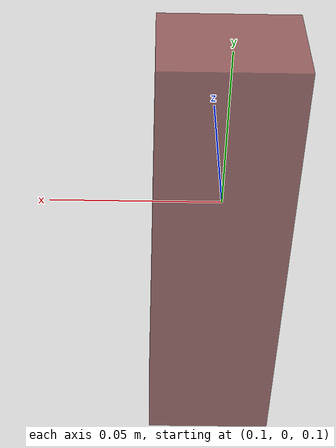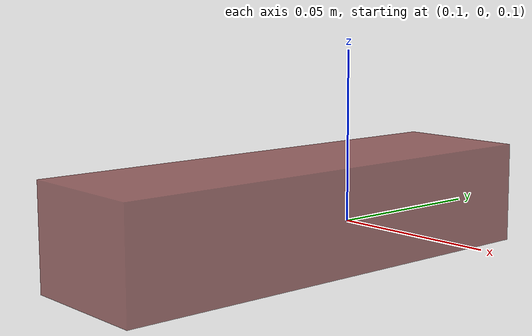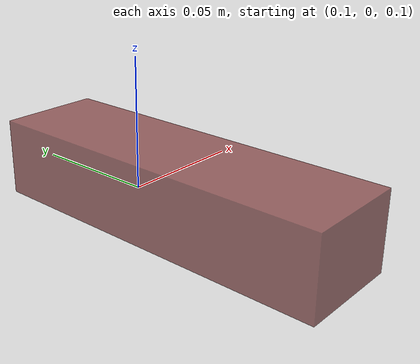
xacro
<?xml version="1.0"?>
<robot xmlns:xacro="http://www.ros.org/wiki/xacro" name="box">
    <xacro:property name="PI" value="3.14159265359" />
    <xacro:property name="bodylength_x" value="0.04" />
    <xacro:property name="bodylength_y" value="0.14" />
    <xacro:property name="bodylength_z" value="0.03" />
    <xacro:property name="width" value="0.025" />
    <xacro:property name="opacity" value="0.7" />
    <xacro:property name="obj_x" value="0.1" />
    <xacro:property name="obj_y" value="-0.02" />
    <xacro:property name="obj_z" value="0.105" />
    <!-- Base link -->
    <link name="obj_base">
        <origin xyz="0 0 0"/>
    </link>
    <joint name="base_joint" type="revolute">
        <limit effort="15" lower="-0.47" upper="0.47" velocity="7"/>
        <parent link="obj_base"/>
        <child link="object_link"/>
        <origin xyz="0 0 0"/>
    </joint>
    <!-- object link -->
    <link name="object_link">
        <visual>
            <geometry>
                <box size="${bodylength_x} ${bodylength_y} ${bodylength_z}"/>
            </geometry>
            <origin rpy="0 0 0" xyz="${obj_x} ${obj_y} ${obj_z}"/>
            <material name="red">
                <color rgba="0.5 0.2 0.2 ${opacity}"/>
            </material>
        </visual>
        <collision>
            <geometry>
                <box size="${bodylength_x} ${bodylength_y} ${bodylength_z}"/>
            </geometry>
        </collision>
    </link>
</robot>
